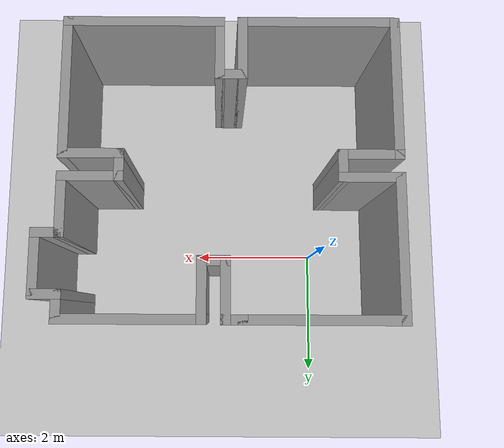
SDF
<sdf version="1.6">
 <world name="default">
  <light name="sun" type="directional">
   <pose>0 0 10 0 -0 0</pose>
   <diffuse>0.8 0.8 0.8 1</diffuse>
   <specular>0.2 0.2 0.2 1</specular>
   <attenuation>
    <range>1000</range>
    <constant>0.9</constant>
    <linear>0.01</linear>
    <quadratic>0.001</quadratic>
   </attenuation>
   <direction>-0.5 0.1 -0.9</direction>
  </light>
  <model name="ground_plane">
   <static>1</static>
   <link name="link">
    <collision name="collision">
     <geometry><plane><normal>0 0 1</normal><size>100 100</size></plane></geometry>
     <surface>
      <contact><collide_bitmask>65535</collide_bitmask></contact>
      <friction><ode><mu>100</mu><mu2>50</mu2></ode></friction>
     </surface>
    </collision>
    <visual name="visual">
     <cast_shadows>0</cast_shadows>
     <geometry><plane><normal>0 0 1</normal><size>100 100</size></plane></geometry>
     <material>
      <script><uri>file://media/materials/scripts/gazebo.material</uri><name>Gazebo/Grey</name></script>
     </material>
    </visual>
   </link>
  </model>
  <gravity>0 0 -9.8</gravity>
  <magnetic_field>6e-06 2.3e-05 -4.2e-05</magnetic_field>
  <atmosphere type="adiabatic"/>
  <physics name="default_physics" default="0" type="ode">
   <max_step_size>0.001</max_step_size>
   <real_time_factor>1</real_time_factor>
   <real_time_update_rate>1000</real_time_update_rate>
  </physics>
  <scene><ambient>0.4 0.4 0.4 1</ambient><background>0.7 0.7 0.7 1</background><shadows>1</shadows></scene>
  <audio><device>default</device></audio>
  <spherical_coordinates>
   <surface_model>EARTH_WGS84</surface_model>
   <latitude_deg>0</latitude_deg>
   <longitude_deg>0</longitude_deg>
   <elevation>0</elevation>
   <heading_deg>0</heading_deg>
  </spherical_coordinates>
  <model name="Rooms4Open">
   <pose>1.6331 -1.15646 0 0 -0 0</pose>
   <link name="Wall_41">
    <collision name="Wall_41_Collision">
     <geometry><box><size>2.5 0.15 2.5</size></box></geometry>
     <pose>0 0 1.25 0 -0 0</pose>
    </collision>
    <visual name="Wall_41_Visual">
     <pose>0 0 1.25 0 -0 0</pose>
     <geometry><box><size>2.5 0.15 2.5</size></box></geometry>
     <material>
      <script><uri>file://media/materials/scripts/gazebo.material</uri><name>Gazebo/Grey</name></script>
      <ambient>1 1 1 1</ambient>
     </material>
     <meta><layer>0</layer></meta>
    </visual>
    <pose>-1.525 2.275 0 0 -0 3.14159</pose>
   </link>
   <link name="Wall_43">
    <collision name="Wall_43_Collision">
     <geometry><box><size>2.25 0.15 2.5</size></box></geometry>
     <pose>0 0 1.25 0 -0 0</pose>
    </collision>
    <visual name="Wall_43_Visual">
     <pose>0 0 1.25 0 -0 0</pose>
     <geometry><box><size>2.25 0.15 2.5</size></box></geometry>
     <material>
      <script><uri>file://media/materials/scripts/gazebo.material</uri><name>Gazebo/Grey</name></script>
      <ambient>1 1 1 1</ambient>
     </material>
     <meta><layer>0</layer></meta>
    </visual>
    <pose>-2.7 1.225 0 0 -0 -1.5708</pose>
   </link>
   <link name="Wall_45">
    <collision name="Wall_45_Collision">
     <geometry><box><size>1 0.15 2.5</size></box></geometry>
     <pose>0 0 1.25 0 -0 0</pose>
    </collision>
    <visual name="Wall_45_Visual">
     <pose>0 0 1.25 0 -0 0</pose>
     <geometry><box><size>1 0.15 2.5</size></box></geometry>
     <material>
      <script><uri>file://media/materials/scripts/gazebo.material</uri><name>Gazebo/Grey</name></script>
      <ambient>1 1 1 1</ambient>
     </material>
     <meta><layer>0</layer></meta>
    </visual>
    <pose>-2.275 0.175 0 0 -0 0</pose>
   </link>
   <link name="Wall_46">
    <collision name="Wall_46_Collision">
     <geometry><box><size>0.5 0.15 2.5</size></box></geometry>
     <pose>0 0 1.25 0 -0 0</pose>
    </collision>
    <visual name="Wall_46_Visual">
     <pose>0 0 1.25 0 -0 0</pose>
     <geometry><box><size>0.5 0.15 2.5</size></box></geometry>
     <material>
      <script><uri>file://media/materials/scripts/gazebo.material</uri><name>Gazebo/Grey</name></script>
      <ambient>1 1 1 1</ambient>
     </material>
     <meta><layer>0</layer></meta>
    </visual>
    <pose>-1.85 0 0 0 -0 -1.5708</pose>
   </link>
   <link name="Wall_47">
    <collision name="Wall_47_Collision">
     <geometry><box><size>1 0.15 2.5</size></box></geometry>
     <pose>0 0 1.25 0 -0 0</pose>
    </collision>
    <visual name="Wall_47_Visual">
     <pose>0 0 1.25 0 -0 0</pose>
     <geometry><box><size>1 0.15 2.5</size></box></geometry>
     <material>
      <script><uri>file://media/materials/scripts/gazebo.material</uri><name>Gazebo/Grey</name></script>
      <ambient>1 1 1 1</ambient>
     </material>
     <meta><layer>0</layer></meta>
    </visual>
    <pose>-2.275 -0.175 0 0 -0 3.14159</pose>
   </link>
   <link name="Wall_48">
    <collision name="Wall_48_Collision">
     <geometry><box><size>2.25 0.15 2.5</size></box></geometry>
     <pose>0 0 1.25 0 -0 0</pose>
    </collision>
    <visual name="Wall_48_Visual">
     <pose>0 0 1.25 0 -0 0</pose>
     <geometry><box><size>2.25 0.15 2.5</size></box></geometry>
     <material>
      <script><uri>file://media/materials/scripts/gazebo.material</uri><name>Gazebo/Grey</name></script>
      <ambient>1 1 1 1</ambient>
     </material>
     <meta><layer>0</layer></meta>
    </visual>
    <pose>-2.7 -1.225 0 0 -0 -1.5708</pose>
   </link>
   <link name="Wall_49">
    <collision name="Wall_49_Collision">
     <geometry><box><size>2.5 0.15 2.5</size></box></geometry>
     <pose>0 0 1.25 0 -0 0</pose>
    </collision>
    <visual name="Wall_49_Visual">
     <pose>0 0 1.25 0 -0 0</pose>
     <geometry><box><size>2.5 0.15 2.5</size></box></geometry>
     <material>
      <script><uri>file://media/materials/scripts/gazebo.material</uri><name>Gazebo/Grey</name></script>
      <ambient>1 1 1 1</ambient>
     </material>
     <meta><layer>0</layer></meta>
    </visual>
    <pose>-1.525 -2.275 0 0 -0 0</pose>
   </link>
   <link name="Wall_50">
    <collision name="Wall_50_Collision">
     <geometry><box><size>1 0.15 2.5</size></box></geometry>
     <pose>0 0 1.25 0 -0 0</pose>
    </collision>
    <visual name="Wall_50_Visual">
     <pose>0 0 1.25 0 -0 0</pose>
     <geometry><box><size>1 0.15 2.5</size></box></geometry>
     <material>
      <script><uri>file://media/materials/scripts/gazebo.material</uri><name>Gazebo/Grey</name></script>
      <ambient>1 1 1 1</ambient>
     </material>
     <meta><layer>0</layer></meta>
    </visual>
    <pose>-0.35 -1.85 0 0 -0 1.5708</pose>
   </link>
   <link name="Wall_51">
    <collision name="Wall_51_Collision">
     <geometry><box><size>0.5 0.15 2.5</size></box></geometry>
     <pose>0 0 1.25 0 -0 0</pose>
    </collision>
    <visual name="Wall_51_Visual">
     <pose>0 0 1.25 0 -0 0</pose>
     <geometry><box><size>0.5 0.15 2.5</size></box></geometry>
     <material>
      <script><uri>file://media/materials/scripts/gazebo.material</uri><name>Gazebo/Grey</name></script>
      <ambient>1 1 1 1</ambient>
     </material>
     <meta><layer>0</layer></meta>
    </visual>
    <pose>-0.175 -1.425 0 0 -0 0</pose>
   </link>
   <link name="Wall_52">
    <collision name="Wall_52_Collision">
     <geometry><box><size>1 0.15 2.5</size></box></geometry>
     <pose>0 0 1.25 0 -0 0</pose>
    </collision>
    <visual name="Wall_52_Visual">
     <pose>0 0 1.25 0 -0 0</pose>
     <geometry><box><size>1 0.15 2.5</size></box></geometry>
     <material>
      <script><uri>file://media/materials/scripts/gazebo.material</uri><name>Gazebo/Grey</name></script>
      <ambient>1 1 1 1</ambient>
     </material>
     <meta><layer>0</layer></meta>
    </visual>
    <pose>-0 -1.85 0 0 -0 -1.5708</pose>
   </link>
   <link name="Wall_53">
    <collision name="Wall_53_Collision">
     <geometry><box><size>2.5 0.15 2.5</size></box></geometry>
     <pose>0 0 1.25 0 -0 0</pose>
    </collision>
    <visual name="Wall_53_Visual">
     <pose>0 0 1.25 0 -0 0</pose>
     <geometry><box><size>2.5 0.15 2.5</size></box></geometry>
     <material>
      <script><uri>file://media/materials/scripts/gazebo.material</uri><name>Gazebo/Grey</name></script>
      <ambient>1 1 1 1</ambient>
     </material>
     <meta><layer>0</layer></meta>
    </visual>
    <pose>1.175 -2.275 0 0 -0 0</pose>
   </link>
   <link name="Wall_54">
    <collision name="Wall_54_Collision">
     <geometry><box><size>2.25 0.15 2.5</size></box></geometry>
     <pose>0 0 1.25 0 -0 0</pose>
    </collision>
    <visual name="Wall_54_Visual">
     <pose>0 0 1.25 0 -0 0</pose>
     <geometry><box><size>2.25 0.15 2.5</size></box></geometry>
     <material>
      <script><uri>file://media/materials/scripts/gazebo.material</uri><name>Gazebo/Grey</name></script>
      <ambient>1 1 1 1</ambient>
     </material>
     <meta><layer>0</layer></meta>
    </visual>
    <pose>2.35 -1.225 0 0 -0 1.5708</pose>
   </link>
   <link name="Wall_55">
    <collision name="Wall_55_Collision">
     <geometry><box><size>1 0.15 2.5</size></box></geometry>
     <pose>0 0 1.25 0 -0 0</pose>
    </collision>
    <visual name="Wall_55_Visual">
     <pose>0 0 1.25 0 -0 0</pose>
     <geometry><box><size>1 0.15 2.5</size></box></geometry>
     <material>
      <script><uri>file://media/materials/scripts/gazebo.material</uri><name>Gazebo/Grey</name></script>
      <ambient>1 1 1 1</ambient>
     </material>
     <meta><layer>0</layer></meta>
    </visual>
    <pose>1.925 -0.175 0 0 -0 3.14159</pose>
   </link>
   <link name="Wall_56">
    <collision name="Wall_56_Collision">
     <geometry><box><size>0.5 0.15 2.5</size></box></geometry>
     <pose>0 0 1.25 0 -0 0</pose>
    </collision>
    <visual name="Wall_56_Visual">
     <pose>0 0 1.25 0 -0 0</pose>
     <geometry><box><size>0.5 0.15 2.5</size></box></geometry>
     <material>
      <script><uri>file://media/materials/scripts/gazebo.material</uri><name>Gazebo/Grey</name></script>
      <ambient>1 1 1 1</ambient>
     </material>
     <meta><layer>0</layer></meta>
    </visual>
    <pose>1.5 0 0 0 -0 1.5708</pose>
   </link>
   <link name="Wall_57">
    <collision name="Wall_57_Collision">
     <geometry><box><size>1 0.15 2.5</size></box></geometry>
     <pose>0 0 1.25 0 -0 0</pose>
    </collision>
    <visual name="Wall_57_Visual">
     <pose>0 0 1.25 0 -0 0</pose>
     <geometry><box><size>1 0.15 2.5</size></box></geometry>
     <material>
      <script><uri>file://media/materials/scripts/gazebo.material</uri><name>Gazebo/Grey</name></script>
      <ambient>1 1 1 1</ambient>
     </material>
     <meta><layer>0</layer></meta>
    </visual>
    <pose>1.925 0.175 0 0 -0 0</pose>
   </link>
   <link name="Wall_58">
    <collision name="Wall_58_Collision">
     <geometry><box><size>1 0.15 2.5</size></box></geometry>
     <pose>0 0 1.25 0 -0 0</pose>
    </collision>
    <visual name="Wall_58_Visual">
     <pose>0 0 1.25 0 -0 0</pose>
     <geometry><box><size>1 0.15 2.5</size></box></geometry>
     <material>
      <script><uri>file://media/materials/scripts/gazebo.material</uri><name>Gazebo/Grey</name></script>
      <ambient>1 1 1 1</ambient>
     </material>
     <meta><layer>0</layer></meta>
    </visual>
    <pose>2.35 0.6 0 0 -0 1.5708</pose>
   </link>
   <link name="Wall_59">
    <collision name="Wall_59_Collision">
     <geometry><box><size>0.5 0.15 2.5</size></box></geometry>
     <pose>0 0 1.25 0 -0 0</pose>
    </collision>
    <visual name="Wall_59_Visual">
     <pose>0 0 1.25 0 -0 0</pose>
     <geometry><box><size>0.5 0.15 2.5</size></box></geometry>
     <material>
      <script><uri>file://media/materials/scripts/gazebo.material</uri><name>Gazebo/Grey</name></script>
      <ambient>1 1 1 1</ambient>
     </material>
     <meta><layer>0</layer></meta>
    </visual>
    <pose>2.525 1.025 0 0 -0 0</pose>
   </link>
   <link name="Wall_60">
    <collision name="Wall_60_Collision">
     <geometry><box><size>1 0.15 2.5</size></box></geometry>
     <pose>0 0 1.25 0 -0 0</pose>
    </collision>
    <visual name="Wall_60_Visual">
     <pose>0 0 1.25 0 -0 0</pose>
     <geometry><box><size>1 0.15 2.5</size></box></geometry>
     <material>
      <script><uri>file://media/materials/scripts/gazebo.material</uri><name>Gazebo/Grey</name></script>
      <ambient>1 1 1 1</ambient>
     </material>
     <meta><layer>0</layer></meta>
    </visual>
    <pose>2.7 1.45 0 0 -0 1.5708</pose>
   </link>
   <link name="Wall_65">
    <collision name="Wall_65_Collision">
     <geometry><box><size>0.5 0.15 2.5</size></box></geometry>
     <pose>0 0 1.25 0 -0 0</pose>
    </collision>
    <visual name="Wall_65_Visual">
     <pose>0 0 1.25 0 -0 0</pose>
     <geometry><box><size>0.5 0.15 2.5</size></box></geometry>
     <material>
      <script><uri>file://media/materials/scripts/gazebo.material</uri><name>Gazebo/Grey</name></script>
      <ambient>1 1 1 1</ambient>
     </material>
     <meta><layer>0</layer></meta>
    </visual>
    <pose>2.525 1.925 0 0 -0 3.14159</pose>
   </link>
   <link name="Wall_66">
    <collision name="Wall_66_Collision">
     <geometry><box><size>0.5 0.15 2.5</size></box></geometry>
     <pose>0 0 1.25 0 -0 0</pose>
    </collision>
    <visual name="Wall_66_Visual">
     <pose>0 0 1.25 0 -0 0</pose>
     <geometry><box><size>0.5 0.15 2.5</size></box></geometry>
     <material>
      <script><uri>file://media/materials/scripts/gazebo.material</uri><name>Gazebo/Grey</name></script>
      <ambient>1 1 1 1</ambient>
     </material>
     <meta><layer>0</layer></meta>
    </visual>
    <pose>2.35 2.1 0 0 -0 1.5708</pose>
   </link>
   <link name="Wall_67">
    <collision name="Wall_67_Collision">
     <geometry><box><size>2.25 0.15 2.5</size></box></geometry>
     <pose>0 0 1.25 0 -0 0</pose>
    </collision>
    <visual name="Wall_67_Visual">
     <pose>0 0 1.25 0 -0 0</pose>
     <geometry><box><size>2.25 0.15 2.5</size></box></geometry>
     <material>
      <script><uri>file://media/materials/scripts/gazebo.material</uri><name>Gazebo/Grey</name></script>
      <ambient>1 1 1 1</ambient>
     </material>
     <meta><layer>0</layer></meta>
    </visual>
    <pose>1.3 2.275 0 0 -0 3.14159</pose>
   </link>
   <link name="Wall_68">
    <collision name="Wall_68_Collision">
     <geometry><box><size>1 0.15 2.5</size></box></geometry>
     <pose>0 0 1.25 0 -0 0</pose>
    </collision>
    <visual name="Wall_68_Visual">
     <pose>0 0 1.25 0 -0 0</pose>
     <geometry><box><size>1 0.15 2.5</size></box></geometry>
     <material>
      <script><uri>file://media/materials/scripts/gazebo.material</uri><name>Gazebo/Grey</name></script>
      <ambient>1 1 1 1</ambient>
     </material>
     <meta><layer>0</layer></meta>
    </visual>
    <pose>0.25 1.85 0 0 -0 -1.5708</pose>
   </link>
   <link name="Wall_69">
    <collision name="Wall_69_Collision">
     <geometry><box><size>0.5 0.15 2.5</size></box></geometry>
     <pose>0 0 1.25 0 -0 0</pose>
    </collision>
    <visual name="Wall_69_Visual">
     <pose>0 0 1.25 0 -0 0</pose>
     <geometry><box><size>0.5 0.15 2.5</size></box></geometry>
     <material>
      <script><uri>file://media/materials/scripts/gazebo.material</uri><name>Gazebo/Grey</name></script>
      <ambient>1 1 1 1</ambient>
     </material>
     <meta><layer>0</layer></meta>
    </visual>
    <pose>0.075 1.425 0 0 -0 3.14159</pose>
   </link>
   <link name="Wall_70">
    <collision name="Wall_70_Collision">
     <geometry><box><size>1 0.15 2.5</size></box></geometry>
     <pose>0 0 1.25 0 -0 0</pose>
    </collision>
    <visual name="Wall_70_Visual">
     <pose>0 0 1.25 0 -0 0</pose>
     <geometry><box><size>1 0.15 2.5</size></box></geometry>
     <material>
      <script><uri>file://media/materials/scripts/gazebo.material</uri><name>Gazebo/Grey</name></script>
      <ambient>1 1 1 1</ambient>
     </material>
     <meta><layer>0</layer></meta>
    </visual>
    <pose>-0.1 1.85 0 0 -0 1.5708</pose>
   </link>
   <link name="Wall_71">
    <collision name="Wall_71_Collision">
     <geometry><box><size>0.4 0.15 2.5</size></box></geometry>
     <pose>0 0 1.25 0 -0 0</pose>
    </collision>
    <visual name="Wall_71_Visual">
     <pose>0 0 1.25 0 -0 0</pose>
     <geometry><box><size>0.4 0.15 2.5</size></box></geometry>
     <material>
      <script><uri>file://media/materials/scripts/gazebo.material</uri><name>Gazebo/Grey</name></script>
      <ambient>1 1 1 1</ambient>
     </material>
     <meta><layer>0</layer></meta>
    </visual>
    <pose>-0.225 2.275 0 0 -0 3.14159</pose>
   </link>
   <static>1</static>
  </model>
 </world>
</sdf>
